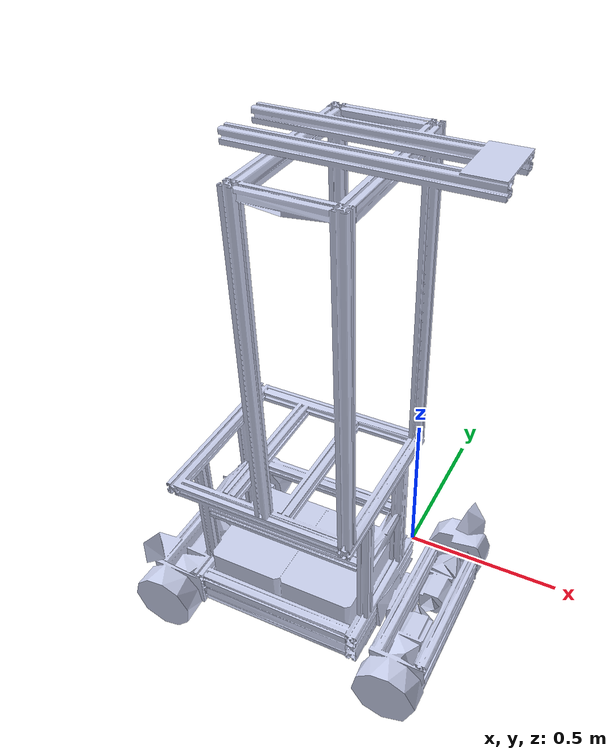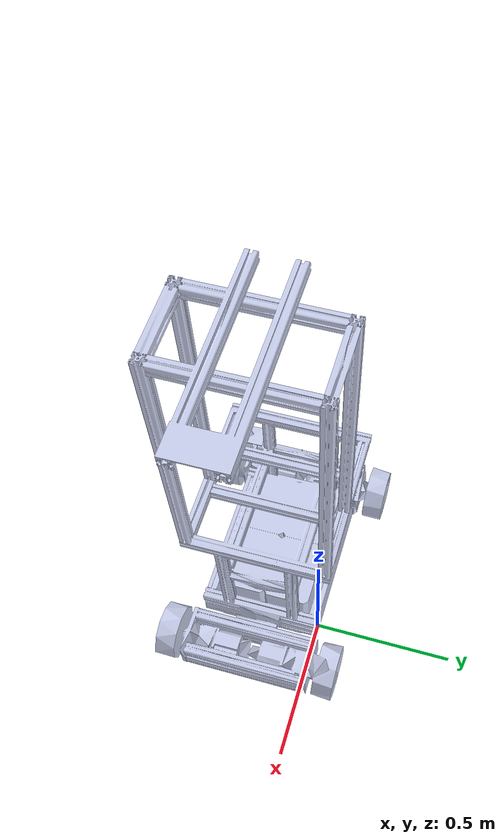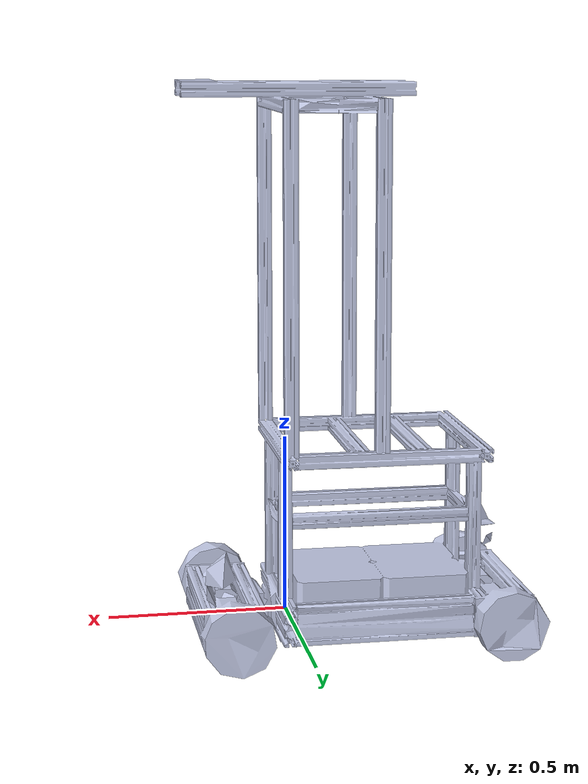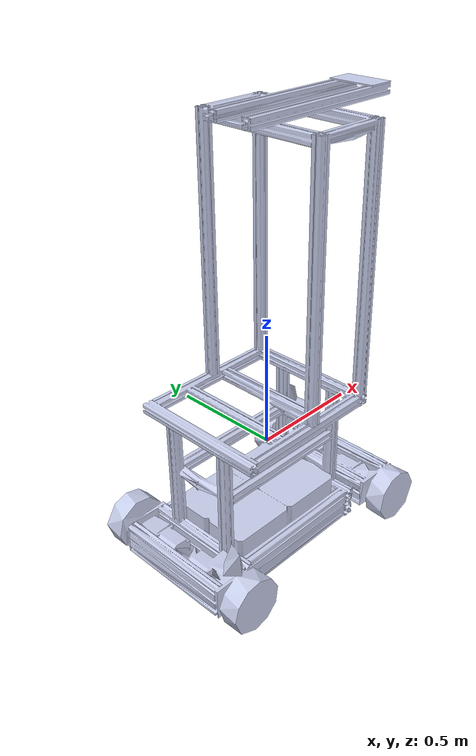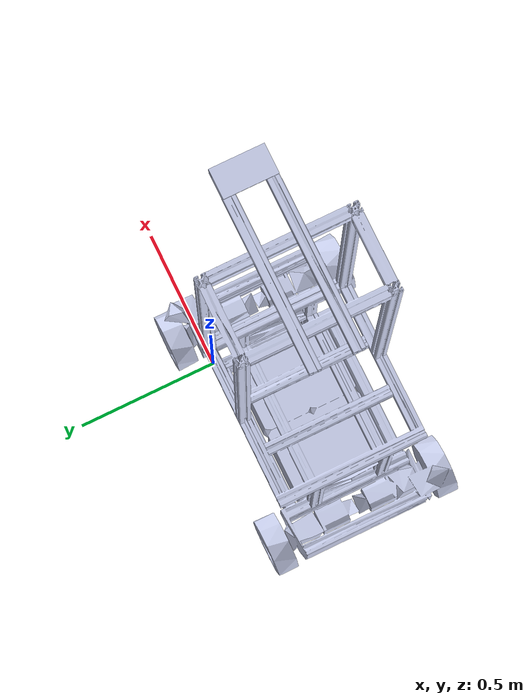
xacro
<?xml version="1.0"?>
<robot xmlns:xacro="http://www.ros.org/wiki/xacro">
  <xacro:include filename="$(find iai_kuka_lwr4_description)/defs/materials.xml"/>
  <xacro:include filename="$(find iai_kuka_lwr4_description)/urdf/kuka_lwr_arm.urdf.xacro"/>
  <xacro:include filename="$(find iai_wsg_50_description)/urdf/wsg_50.urdf.xacro"/>
  <xacro:include filename="$(find iai_kms_40_description)/urdf/kms_40.urdf.xacro"/>
  <xacro:include filename="$(find iai_adapters_description)/urdf/lwr4_cabling_adaptor.urdf.xacro"/>
  <!--xacro:include filename="$(find iai_kinect_description)/urdf/kinect.urdf.xacro"/-->
  <xacro:include filename="$(find iai_adapters_description)/urdf/adapter_fwa050_wsg50.urdf.xacro"/>
  <xacro:include filename="$(find iai_adapters_description)/urdf/adapter_kms40_fwk050.urdf.xacro"/>
  <xacro:include filename="$(find iai_adapters_description)/urdf/fwk_fwa_050.urdf.xacro"/>
  <xacro:include filename="$(find iai_adapters_description)/urdf/adapter_boxy_ur3.urdf.xacro"/>
  <xacro:include filename="$(find iai_ur_description)/urdf/ur3.urdf.xacro"/>
  <xacro:include filename="$(find iai_kinect2_description)/urdf/kinect2.urdf.xacro"/>
  <xacro:include filename="$(find iai_adapter_iso50_kinect2_description)/urdf/adapter_iso50_kinect2.urdf.xacro"/>
  <!-- Property definitions e.g. constants -->
  <xacro:property name="head_joint_x" value="0.2"/>
  <xacro:property name="head_joint_y" value="-0.21"/>
  <xacro:property name="head_joint_z" value="1.48"/>
  <xacro:property name="torso_joint_x" value="0"/>
  <!--this is the diamiter of one of the aluminium (/2) pipes (20mm) = the diamiter of the piece that holds the slider (45mm) -->
  <xacro:property name="torso_joint_y" value="0.065"/>
  <!-- distance from the axis 0 to the first alu pipe 74 + distance between the pipes 150 + diamiter of the slider 200 /2   ( = center ) -->
  <xacro:property name="torso_joint_z" value="0.410"/>
  <!-- /Property definitions e.g. constants -->
  <xacro:include filename="$(find iai_boxy_base)/robots/base.URDF"/>
  <xacro:property name="M_PI" value="${pi}" />
  <xacro:macro name="boxy">
    <!-- virtual joints to model odometry -->
    <link name="odom"/>

    <joint name="odom_x_joint" type="prismatic">
      <parent link="odom"/>
      <child link="odom_x_frame"/>
      <axis xyz="1 0 0"/>
      <limit lower="-1000" upper="1000" velocity="1" effort="200"/>
    </joint>
    <link name="odom_x_frame"/>

    <joint name="odom_y_joint" type="prismatic">
      <parent link="odom_x_frame"/>
      <child link="odom_y_frame"/>
      <axis xyz="0 1 0"/>
      <limit lower="-1000" upper="1000" velocity="1" effort="200"/>
    </joint>
    <link name="odom_y_frame"/>

    <joint name="odom_z_joint" type="continuous">
      <parent link="odom_y_frame"/>
      <child link="base_footprint"/>
      <axis xyz="0 0 1"/>
      <limit velocity="1" effort="200"/>
    </joint>

    <link name="base_footprint">
      <visual>
        <origin rpy="0 0 0" xyz="0 0 0"/>
        <geometry>
          <box size="0.01 0.01 0.01"/>
        </geometry>
        <material name="White"/>
      </visual>
      <collision>
        <origin rpy="0 0 0" xyz="0 0 0.071"/>
        <geometry>
          <box size="0.001 0.001 0.001"/>
        </geometry>
      </collision>
    </link>

    <!-- JOINT to define base_footprint -->
    <joint name="base_footprint_joint" type="fixed">
      <origin xyz="0.36 0.25 0.16" rpy="0 0 0"/>
      <parent link="base_footprint"/>
      <child link="base_link"/>
    </joint>

    <!-- /JOINT for base_footprint -->
    <!-- NEW NECK ASSEMBLY -->
    <!-- mounting plate of UR3 -->
    <xacro:property name="ur3_prefix" value="neck_"/>
    <xacro:adapter_boxy_ur3_xacro prefix="${ur3_prefix}" parent="base_link">
      <origin xyz="0.175 -0.227 1.48" rpy="0 0 0"/>
    </xacro:adapter_boxy_ur3_xacro>
    <xacro:ur3_robot prefix="${ur3_prefix}" joint_limited="true" transmission_hw_interface="$(arg transmission_hw_interface)" kinematics_file="${load_yaml('$(arg kinematics_config)')}"/>

    <joint name="${ur3_prefix}base_mounting_joint" type="fixed">
      <parent link="${ur3_prefix}adapter_ur3_frame_out" />
      <child link="${ur3_prefix}base_link" />
      <origin xyz="0.0 0.0 0.0" rpy="0.0 0.0 -${M_PI/2.0}"/>
    </joint>

    <!-- The following URDF has frame_in / frame_out, so it is placed at the parent -->
    <xacro:adapter_iso50_kinect2_xacro parent="neck_tool0" prefix="neck">
      <origin xyz="0 0 0" rpy="0 0 -1.570795"/>
    </xacro:adapter_iso50_kinect2_xacro>

    <xacro:kinect2_xacro parent="neck_adapter_iso50_kinect2_frame_out" prefix="head_mount">
      <origin xyz="-0.031284 0.098627 0.023544" rpy="4.728550 6.279385 1.578295"/>
    </xacro:kinect2_xacro>

    <!-- JOINT to connect the base with the torso -->
    <joint name="torso_joint" type="fixed">
      <origin xyz="${torso_joint_x} ${torso_joint_y} ${torso_joint_z}" rpy="0 0 0"/>
      <parent link="base_link"/>
      <child link="torso_base_link"/>
    </joint>

    <!-- /JOINT to connect the base with the torso -->
    <xacro:include filename="$(find iai_boxy_torso)/robots/torso.URDF"/>

    <!--FIXME: triangle_left_arm_link should be rotated, and not the origin of the arm (which right now is calib_left_arm_base_link -->
    <xacro:kuka_lwr_arm parent="triangle_left_arm_link" prefix="left_" color_postfix="">
      <!-- From CAD -->
      <!--origin xyz="0 0 0" rpy="0 0 1.047198"/-->
      <!-- from calibration on 20160903 -->
      <origin xyz="-0.006185 0.004080 -0.010726" rpy="6.276354 6.281653 1.074679"/>
    </xacro:kuka_lwr_arm>
    <xacro:lwr4_cabling_adaptor parent="left_arm_flange_link" prefix="left_arm_">
      <origin xyz="0 0 0.01" rpy="0 0 0"/>
    </xacro:lwr4_cabling_adaptor>

    <!-- The following URDFs have frame_in / frame_out, so they are simply placed at their parent -->
    <xacro:kms_40_xacro parent="left_arm_cabling_adaptor_link" prefix="left_arm_">
      <origin xyz="0 0 0" rpy="0 0 0"/>
      <!--places the kms40 frame 13mm from the parent -->
    </xacro:kms_40_xacro>
    <xacro:adapter_kms40_fwk050_xacro parent="left_arm_kms40_frame_out" prefix="left_arm_">
      <origin xyz="0 0 0" rpy="0 0 0"/>
    </xacro:adapter_kms40_fwk050_xacro>
    <xacro:fwk_fwa_050_xacro parent="left_arm_adapter_kms40_fwk050_frame_out" prefix="left_arm_">
      <origin xyz="0 0 0" rpy="0 0 0"/>
    </xacro:fwk_fwa_050_xacro>
    <xacro:adapter_fwa050_wsg50_xacro parent="left_arm_fwk_fwa_050_frame_out" prefix="left_arm_">
      <origin xyz="0 0 0.0" rpy="0 0 0"/>
    </xacro:adapter_fwa050_wsg50_xacro>
    <xacro:wsg_50_xacro name="left_gripper" parent="left_arm_adapter_fwa050_wsg50_frame_out">
      <origin xyz="0 0 0" rpy="0 0 0"/>
    </xacro:wsg_50_xacro>

    <link name="left_wrist_optical_frame_x">
      <inertial>
        <mass value="1"/>
        <origin xyz="0 0 0"/>
        <inertia ixx="0.01" ixy="0" ixz="0" iyy="0.01" iyz="0" izz="0.01"/>
      </inertial>
      <visual>
        <origin rpy="0 0 0" xyz="0 0 0"/>
        <geometry>
          <box size="0.01 0.01 0.01"/>
        </geometry>
        <material name="White"/>
      </visual>
      <collision>
        <origin rpy="0 0 0" xyz="0 0 0.0"/>
        <geometry>
          <box size="0.001 0.001 0.001"/>
        </geometry>
      </collision>
    </link>

    <!-- Box that limits the position of the head while planning -->
    <link name="limit_box">
      <visual>
        <origin rpy="0 0 0" xyz="0.25 -0.2 1.35"/>
        <geometry>
          <box size="0.01 0.01 0.01"/>
        </geometry>
        <material name="box_color">
          <color rgba="0.2 0.2 0.2 1"/>
        </material>
      </visual>
      <collision>
        <origin rpy="0 0 0" xyz="0.25 -0.2 1.35"/>
        <geometry>
          <box size="0.4 0.35 0.1"/>
        </geometry>
      </collision>
    </link>
    <joint name="fixed_box" type="fixed">
      <origin xyz="0.0 0.0 0.0" rpy="0.0 0.0 0.0"/>
      <parent link="base_link"/>
      <child link="limit_box"/>
    </joint>

    <link name="limit_box2">
      <visual>
        <origin rpy="0 0 0" xyz="-0.2 -0.2 1.55"/>
        <geometry>
          <box size="0.01 0.01 0.01"/>
        </geometry>
        <material name="box_color">
          <color rgba="0.2 0.2 0.2 1"/>
        </material>
      </visual>
      <collision>
        <origin rpy="0 0 0" xyz="-0.2 -0.2 1.55"/>
        <geometry>
          <box size="0.25 0.40 0.15"/>
        </geometry>
      </collision>
    </link>

    <joint name="fixed_box2" type="fixed">
      <origin xyz="0.0 0.0 0.0" rpy="0.0 0.0 0.0"/>
      <parent link="base_link"/>
      <child link="limit_box2"/>
    </joint>

    <!-- JOINT to define base_footprint -->
    <joint name="left_wrist_optical_joint_x" type="fixed">
      <origin xyz="0.000836 -0.053028 0.073603" rpy="0.007552 6.274592 3.141201"/>
      <parent link="left_gripper_base_link"/>
      <child link="left_wrist_optical_frame_x"/>
    </joint>

    <!-- /JOINT for base_footprint -->
    <link name="left_wrist_optical_frame">
      <inertial>
        <mass value="1"/>
        <origin xyz="0 0 0"/>
        <inertia ixx="0.01" ixy="0" ixz="0" iyy="0.01" iyz="0" izz="0.01"/>
      </inertial>
      <visual>
        <origin rpy="0 0 0" xyz="0 0 0"/>
        <geometry>
          <box size="0.01 0.01 0.01"/>
        </geometry>
        <material name="White"/>
      </visual>
      <collision>
        <origin rpy="0 0 0" xyz="0 0 0.0"/>
        <geometry>
          <box size="0.001 0.001 0.001"/>
        </geometry>
      </collision>
    </link>

    <!-- JOINT to define base_footprint -->
    <joint name="left_wrist_optical_joint" type="fixed">
      <origin xyz="0.0 0.0 0.0" rpy="0.0 0.0 3.141519"/>
      <parent link="left_wrist_optical_frame_x"/>
      <child link="left_wrist_optical_frame"/>
    </joint>

    <!-- /JOINT for base_footprint -->
    <!--This is a 60deg rotation to calib_right_arm_base_link -->
    <xacro:kuka_lwr_arm parent="triangle_right_arm_link" prefix="right_" color_postfix="">
      <origin xyz="0 0 0" rpy="0 0 -1.047198"/>
    </xacro:kuka_lwr_arm>
    <xacro:lwr4_cabling_adaptor parent="right_arm_flange_link" prefix="right_arm_">
      <origin xyz="0 0 0.01" rpy="0 0 0"/>
    </xacro:lwr4_cabling_adaptor>

    <!-- The following URDFs have frame_in / frame_out, so they are simply placed at their parent -->
    <xacro:kms_40_xacro parent="right_arm_cabling_adaptor_link" prefix="right_arm_">
      <origin xyz="0 0 0" rpy="0 0 3.14159265359"/>
      <!--places the kms40 frame 13mm from the parent -->
    </xacro:kms_40_xacro>
    <xacro:adapter_kms40_fwk050_xacro parent="right_arm_kms40_frame_out" prefix="right_arm_">
      <origin xyz="0 0 0" rpy="0 0 0"/>
    </xacro:adapter_kms40_fwk050_xacro>
    <xacro:fwk_fwa_050_xacro parent="right_arm_adapter_kms40_fwk050_frame_out" prefix="right_arm_">
      <origin xyz="0 0 0" rpy="0 0 0"/>
    </xacro:fwk_fwa_050_xacro>
    <xacro:adapter_fwa050_wsg50_xacro parent="right_arm_fwk_fwa_050_frame_out" prefix="right_arm_">
      <origin xyz="0 0 0.0" rpy="0 0 0"/>
    </xacro:adapter_fwa050_wsg50_xacro>
    <xacro:wsg_50_xacro name="right_gripper" parent="right_arm_adapter_fwa050_wsg50_frame_out">
      <origin xyz="0 0 0" rpy="0 0 3.14159265359"/>
    </xacro:wsg_50_xacro>
  </xacro:macro>

</robot>

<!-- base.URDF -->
<robot
  name="base">
  <link
    name="base_link">
    <inertial>
      <origin
        xyz="-0.257082749974343 -0.227847593519202 0.0535404411050965"
        rpy="0 0 0" />
      <mass
        value="70.0210745907357" />
      <inertia
        ixx="9.06122735721955"
        ixy="0.0933988942518672"
        ixz="0.665662584048376"
        iyy="12.5350462868938"
        iyz="0.00262520723302998"
        izz="7.44839974564544" />
    </inertial>
    <visual>
      <origin
        xyz="0 0 0"
        rpy="0 0 0" />
      <geometry>
        <mesh
          filename="package://iai_boxy_base/meshes/base_link.dae" />
      </geometry>
      <material
        name="">
        <color
          rgba="0.792156862745098 0.819607843137255 0.933333333333333 1" />
      </material>
    </visual>
    <collision>
      <origin
        xyz="0 0 0"
        rpy="0 0 0" />
      <geometry>
        <mesh filename="package://iai_boxy_base/meshes/base_link_simple.STL" />
      </geometry>
    </collision>
  </link>
  <link
    name="laser_reference_front" />
  <joint
    name="laser_reference_front_joint"
    type="fixed">
    <origin
      xyz="0.19107 0.0506 0.1575"
      rpy="-4.1881E-15 -4.2124E-15 0.7854" />
    <parent
      link="base_link" />
    <child
      link="laser_reference_front" />
    <axis
      xyz="-0.99849 0 -0.054862" />
  </joint>
  <link
    name="laser_reference_back" />
  <joint
    name="laser_reference_back_joint"
    type="fixed">
    <origin
      xyz="-0.69357 -0.506 0.1575"
      rpy="4.9333E-15 4.5082E-15 -2.3562" />
    <parent
      link="base_link" />
    <child
      link="laser_reference_back" />
    <axis
      xyz="-1 0 0" />
  </joint>
</robot>
